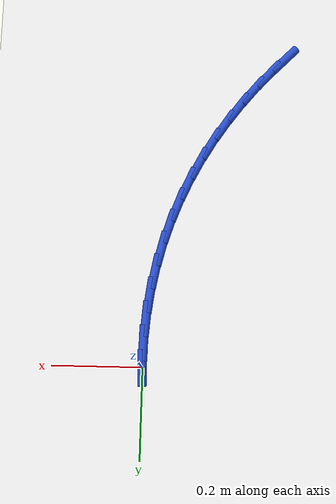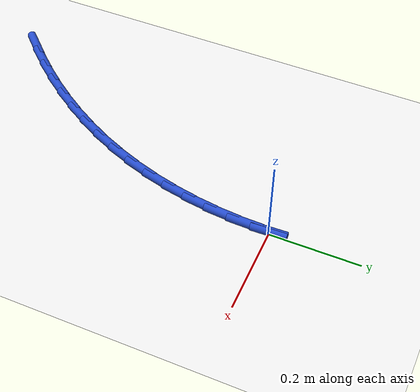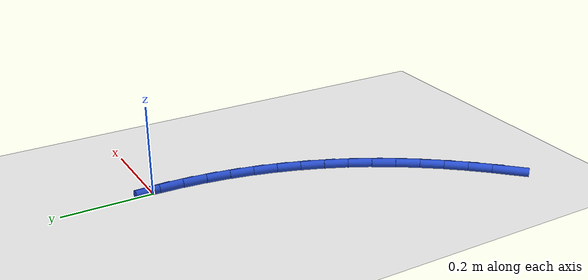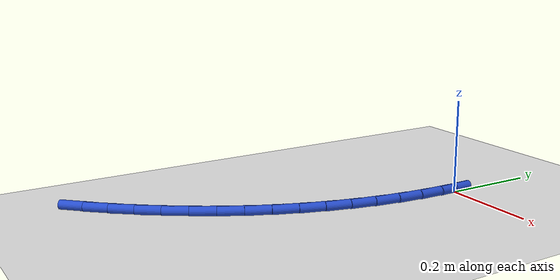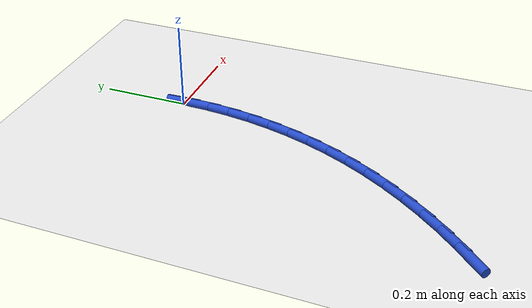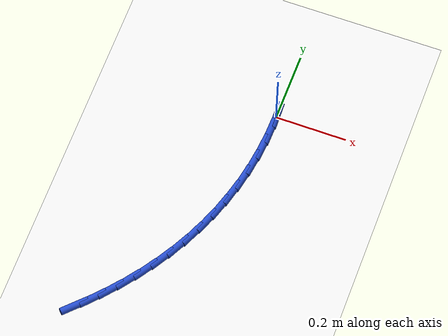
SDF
<sdf version="1.6">
 <world name="default">
  <model name="ground_plane">
   <static>1</static>
   <link name="link">
    <collision name="collision">
     <geometry><plane><normal>0 0 1</normal><size>100 100</size></plane></geometry>
     <surface><friction><ode><mu>100</mu><mu2>50</mu2></ode></friction></surface>
    </collision>
    <visual name="visual">
     <cast_shadows>0</cast_shadows>
     <geometry><plane><normal>0 0 1</normal><size>100 100</size></plane></geometry>
     <material>
      <script><uri>file://media/materials/scripts/gazebo.material</uri><name>Gazebo/WhiteGlow</name></script>
     </material>
    </visual>
   </link>
  </model>
  <model name="line">
   <link name="link_0">
    <pose>-1.5612511283791264e-17 -1.6653345369377348e-16 0.01 0 1.57 -1.5351390074546476</pose>
    <collision name="collision">
     <geometry><cylinder><radius>0.01</radius><length>0.08</length></cylinder></geometry>
    </collision>
    <visual name="visual">
     <material>
      <script><name>Gazebo/Blue</name><uri>file://media/materials/scripts/gazebo.material</uri></script>
     </material>
     <geometry><cylinder><radius>0.01</radius><length>0.08</length></cylinder></geometry>
    </visual>
   </link>
   <link name="link_125">
    <pose>-0.3114227101890593 -0.7232276079877255 0.01 0 1.57 0.7970621373803342</pose>
    <collision name="collision">
     <geometry><cylinder><radius>0.01</radius><length>0.08</length></cylinder></geometry>
    </collision>
    <visual name="visual">
     <material>
      <script><name>Gazebo/Blue</name><uri>file://media/materials/scripts/gazebo.material</uri></script>
     </material>
     <geometry><cylinder><radius>0.01</radius><length>0.08</length></cylinder></geometry>
    </visual>
   </link>
   <link name="link_126">
    <pose>-0.2742174103351089 -0.6851441016303988 0.01 0 1.57 0.8448708888304121</pose>
    <collision name="collision">
     <geometry><cylinder><radius>0.01</radius><length>0.08</length></cylinder></geometry>
    </collision>
    <visual name="visual">
     <material>
      <script><name>Gazebo/Blue</name><uri>file://media/materials/scripts/gazebo.material</uri></script>
     </material>
     <geometry><cylinder><radius>0.01</radius><length>0.08</length></cylinder></geometry>
    </visual>
   </link>
   <link name="link_127">
    <pose>-0.23850743630759866 -0.6449123327145803 0.01 0 1.57 0.893236409134991</pose>
    <collision name="collision">
     <geometry><cylinder><radius>0.01</radius><length>0.08</length></cylinder></geometry>
    </collision>
    <visual name="visual">
     <material>
      <script><name>Gazebo/Blue</name><uri>file://media/materials/scripts/gazebo.material</uri></script>
     </material>
     <geometry><cylinder><radius>0.01</radius><length>0.08</length></cylinder></geometry>
    </visual>
   </link>
   <link name="link_128">
    <pose>-0.20454017286205786 -0.6026977592437011 0.01 0 1.57 0.9426843587966968</pose>
    <collision name="collision">
     <geometry><cylinder><radius>0.01</radius><length>0.08</length></cylinder></geometry>
    </collision>
    <visual name="visual">
     <material>
      <script><name>Gazebo/Blue</name><uri>file://media/materials/scripts/gazebo.material</uri></script>
     </material>
     <geometry><cylinder><radius>0.01</radius><length>0.08</length></cylinder></geometry>
    </visual>
   </link>
   <link name="link_129">
    <pose>-0.17256300475401606 -0.5586658392211941 0.01 0 1.57 0.9937256865172458</pose>
    <collision name="collision">
     <geometry><cylinder><radius>0.01</radius><length>0.08</length></cylinder></geometry>
    </collision>
    <visual name="visual">
     <material>
      <script><name>Gazebo/Blue</name><uri>file://media/materials/scripts/gazebo.material</uri></script>
     </material>
     <geometry><cylinder><radius>0.01</radius><length>0.08</length></cylinder></geometry>
    </visual>
   </link>
   <link name="link_130">
    <pose>-0.1428233167390032 -0.5129820306504912 0.01 0 1.57 1.0468625596953485</pose>
    <collision name="collision">
     <geometry><cylinder><radius>0.01</radius><length>0.08</length></cylinder></geometry>
    </collision>
    <visual name="visual">
     <material>
      <script><name>Gazebo/Blue</name><uri>file://media/materials/scripts/gazebo.material</uri></script>
     </material>
     <geometry><cylinder><radius>0.01</radius><length>0.08</length></cylinder></geometry>
    </visual>
   </link>
   <link name="link_131">
    <pose>-0.11556849357254848 -0.4658117915350242 0.01 0 1.57 1.1025655172053683</pose>
    <collision name="collision">
     <geometry><cylinder><radius>0.01</radius><length>0.08</length></cylinder></geometry>
    </collision>
    <visual name="visual">
     <material>
      <script><name>Gazebo/Blue</name><uri>file://media/materials/scripts/gazebo.material</uri></script>
     </material>
     <geometry><cylinder><radius>0.01</radius><length>0.08</length></cylinder></geometry>
    </visual>
   </link>
   <link name="link_132">
    <pose>-0.09104438420118248 -0.417320466542632 0.01 0 1.57 1.1598615592183295</pose>
    <collision name="collision">
     <geometry><cylinder><radius>0.01</radius><length>0.08</length></cylinder></geometry>
    </collision>
    <visual name="visual">
     <material>
      <script><name>Gazebo/Blue</name><uri>file://media/materials/scripts/gazebo.material</uri></script>
     </material>
     <geometry><cylinder><radius>0.01</radius><length>0.08</length></cylinder></geometry>
    </visual>
   </link>
   <link name="link_133">
    <pose>-0.06940817120590714 -0.3676668571738078 0.01 0 1.57 1.2167675048850948</pose>
    <collision name="collision">
     <geometry><cylinder><radius>0.01</radius><length>0.08</length></cylinder></geometry>
    </collision>
    <visual name="visual">
     <material>
      <script><name>Gazebo/Blue</name><uri>file://media/materials/scripts/gazebo.material</uri></script>
     </material>
     <geometry><cylinder><radius>0.01</radius><length>0.08</length></cylinder></geometry>
    </visual>
   </link>
   <link name="link_134">
    <pose>-0.05068157001314801 -0.3169997680801085 0.01 0 1.57 1.2731748757896428</pose>
    <collision name="collision">
     <geometry><cylinder><radius>0.01</radius><length>0.08</length></cylinder></geometry>
    </collision>
    <visual name="visual">
     <material>
      <script><name>Gazebo/Blue</name><uri>file://media/materials/scripts/gazebo.material</uri></script>
     </material>
     <geometry><cylinder><radius>0.01</radius><length>0.08</length></cylinder></geometry>
    </visual>
   </link>
   <link name="link_135">
    <pose>-0.03487486971737929 -0.26546716070268456 0.01 0 1.57 1.3291714121512581</pose>
    <collision name="collision">
     <geometry><cylinder><radius>0.01</radius><length>0.08</length></cylinder></geometry>
    </collision>
    <visual name="visual">
     <material>
      <script><name>Gazebo/Blue</name><uri>file://media/materials/scripts/gazebo.material</uri></script>
     </material>
     <geometry><cylinder><radius>0.01</radius><length>0.08</length></cylinder></geometry>
    </visual>
   </link>
   <link name="link_136">
    <pose>-0.02199835941307583 -0.21321699648268877 0.01 0 1.57 1.384857216397897</pose>
    <collision name="collision">
     <geometry><cylinder><radius>0.01</radius><length>0.08</length></cylinder></geometry>
    </collision>
    <visual name="visual">
     <material>
      <script><name>Gazebo/Blue</name><uri>file://media/materials/scripts/gazebo.material</uri></script>
     </material>
     <geometry><cylinder><radius>0.01</radius><length>0.08</length></cylinder></geometry>
    </visual>
   </link>
   <link name="link_137">
    <pose>-0.012062328194711786 -0.16039723686127136 0.01 0 1.57 1.4403415912827098</pose>
    <collision name="collision">
     <geometry><cylinder><radius>0.01</radius><length>0.08</length></cylinder></geometry>
    </collision>
    <visual name="visual">
     <material>
      <script><name>Gazebo/Blue</name><uri>file://media/materials/scripts/gazebo.material</uri></script>
     </material>
     <geometry><cylinder><radius>0.01</radius><length>0.08</length></cylinder></geometry>
    </visual>
   </link>
   <link name="link_138">
    <pose>-0.00507706515676153 -0.10715584327958348 0.01 0 1.57 1.495739964439206</pose>
    <collision name="collision">
     <geometry><cylinder><radius>0.01</radius><length>0.08</length></cylinder></geometry>
    </collision>
    <visual name="visual">
     <material>
      <script><name>Gazebo/Blue</name><uri>file://media/materials/scripts/gazebo.material</uri></script>
     </material>
     <geometry><cylinder><radius>0.01</radius><length>0.08</length></cylinder></geometry>
    </visual>
   </link>
   <link name="link_139">
    <pose>-0.0010528593936994773 -0.05364077717877629 0.01 0 1.57 1.5511708800147879</pose>
    <collision name="collision">
     <geometry><cylinder><radius>0.01</radius><length>0.08</length></cylinder></geometry>
    </collision>
    <visual name="visual">
     <material>
      <script><name>Gazebo/Blue</name><uri>file://media/materials/scripts/gazebo.material</uri></script>
     </material>
     <geometry><cylinder><radius>0.01</radius><length>0.08</length></cylinder></geometry>
    </visual>
   </link>
   <link name="link_140">
    <pose>-1.5612511283791264e-17 0.0 0.01 0 1.57 -1.5348396363495924</pose>
    <collision name="collision">
     <geometry><cylinder><radius>0.01</radius><length>0.08</length></cylinder></geometry>
    </collision>
    <visual name="visual">
     <material>
      <script><name>Gazebo/Blue</name><uri>file://media/materials/scripts/gazebo.material</uri></script>
     </material>
     <geometry><cylinder><radius>0.01</radius><length>0.08</length></cylinder></geometry>
    </visual>
   </link>
  </model>
 </world>
</sdf>
